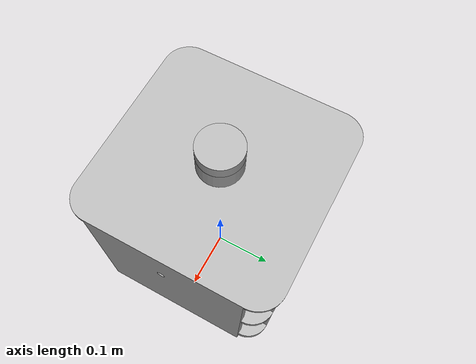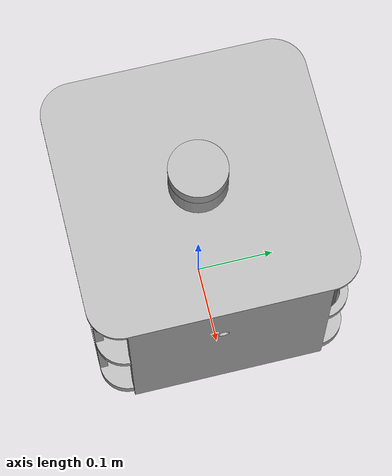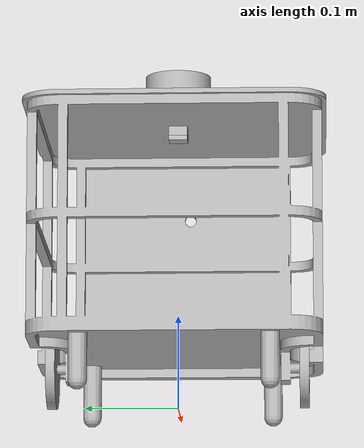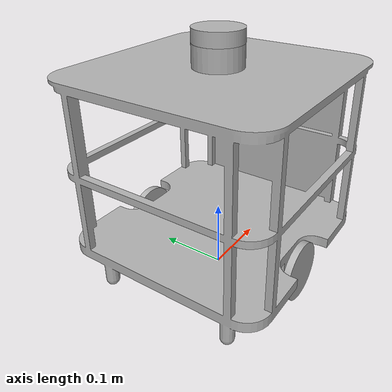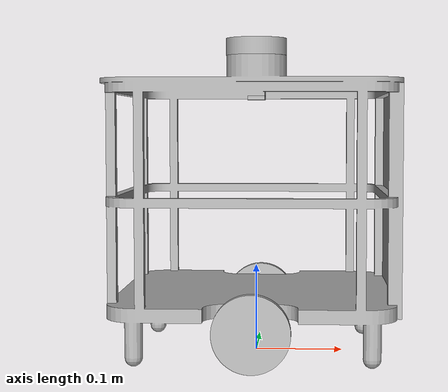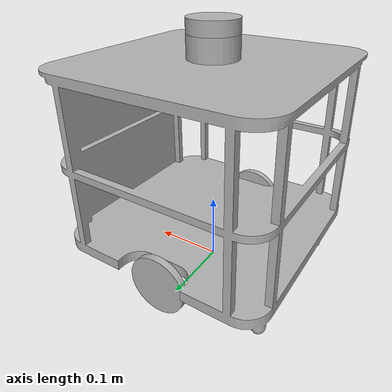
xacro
<?xml version="1.0" ?>
<robot name="bogie" xmlns:xacro="http://www.ros.org/wiki/xacro">

<xacro:include filename="$(find bogie_description)/urdf/materials.xacro" />
<xacro:include filename="$(find bogie_description)/urdf/bogie.trans" />
<xacro:include filename="$(find bogie_description)/urdf/bogie.gazebo" />

<link name="base_footprint"/>

<link name="base_link">
  <inertial>
    <origin xyz="0.023593829702523186 2.7513944896831823e-06 0.1912441485307813" rpy="0 0 0"/>
    <mass value="15.686014886500574"/>
    <inertia ixx="0.331175" iyy="0.376785" izz="0.327602" ixy="-5e-06" iyz="-2e-06" ixz="0.003281"/>
  </inertial>
  <visual>
    <origin xyz="0 0 0" rpy="0 0 0"/>
    <geometry>
      <mesh filename="package://bogie_description/meshes/base_link.stl" scale="0.001 0.001 0.001"/>
    </geometry>
    <material name="silver"/>
  </visual>
  <collision>
    <origin xyz="0 0 0" rpy="0 0 0"/>
    <geometry>
      <mesh filename="package://bogie_description/meshes/base_link.stl" scale="0.001 0.001 0.001"/>
    </geometry>
  </collision>
</link>

<link name="right_wheel">
  <inertial>
    <origin xyz="1.0017341003671332e-17 -0.0050000000000000044 6.938893903907228e-18" rpy="0 0 0"/>
    <mass value="0.44544838584790514"/>
    <inertia ixx="0.000205" iyy="0.000402" izz="0.000205" ixy="-0.0" iyz="-0.0" ixz="0.0"/>
  </inertial>
  <visual>
    <origin xyz="-0.0 0.13 -0.0425" rpy="0 0 0"/>
    <geometry>
      <mesh filename="package://bogie_description/meshes/right_wheel.stl" scale="0.001 0.001 0.001"/>
    </geometry>
    <material name="silver"/>
  </visual>
  <collision>
    <origin xyz="-0.0 0.13 -0.0425" rpy="0 0 0"/>
    <geometry>
      <mesh filename="package://bogie_description/meshes/right_wheel.stl" scale="0.001 0.001 0.001"/>
    </geometry>
  </collision>
</link>

<link name="left_wheel">
  <inertial>
    <origin xyz="2.6999999016951607e-08 0.004999994999997953 2.0816681711721685e-17" rpy="0 0 0"/>
    <mass value="0.44544838584790525"/>
    <inertia ixx="0.000205" iyy="0.000402" izz="0.000205" ixy="0.0" iyz="0.0" ixz="0.0"/>
  </inertial>
  <visual>
    <origin xyz="-0.0 -0.13 -0.0425" rpy="0 0 0"/>
    <geometry>
      <mesh filename="package://bogie_description/meshes/left_wheel.stl" scale="0.001 0.001 0.001"/>
    </geometry>
    <material name="silver"/>
  </visual>
  <collision>
    <origin xyz="-0.0 -0.13 -0.0425" rpy="0 0 0"/>
    <geometry>
      <mesh filename="package://bogie_description/meshes/left_wheel.stl" scale="0.001 0.001 0.001"/>
    </geometry>
  </collision>
</link>

<link name="imu_link">
  <inertial>
    <origin xyz="0.0 0.0 -0.0025000000000000022" rpy="0 0 0"/>
    <mass value="0.0157"/>
    <inertia ixx="1e-06" iyy="1e-06" izz="1e-06" ixy="0.0" iyz="0.0" ixz="0.0"/>
  </inertial>
  <visual>
    <origin xyz="-0.0 -0.0 -0.2975" rpy="0 0 0"/>
    <geometry>
      <mesh filename="package://bogie_description/meshes/imu_link.stl" scale="0.001 0.001 0.001"/>
    </geometry>
    <material name="silver"/>
  </visual>
  <collision>
    <origin xyz="-0.0 -0.0 -0.2975" rpy="0 0 0"/>
    <geometry>
      <mesh filename="package://bogie_description/meshes/imu_link.stl" scale="0.001 0.001 0.001"/>
    </geometry>
  </collision>
</link>

<link name="base_laser_link">
  <inertial>
    <origin xyz="0.0 0.0 0.009750000000000036" rpy="0 0 0"/>
    <mass value="0.5891016369241163"/>
    <inertia ixx="0.000199" iyy="0.000199" izz="0.000361" ixy="0.0" iyz="0.0" ixz="0.0"/>
  </inertial>
  <visual>
    <origin xyz="-0.0 -0.0 -0.344" rpy="0 0 0"/>
    <geometry>
      <mesh filename="package://bogie_description/meshes/base_laser_link.stl" scale="0.001 0.001 0.001"/>
    </geometry>
    <material name="silver"/>
  </visual>
  <collision>
    <origin xyz="-0.0 -0.0 -0.344" rpy="0 0 0"/>
    <geometry>
      <mesh filename="package://bogie_description/meshes/base_laser_link.stl" scale="0.001 0.001 0.001"/>
    </geometry>
  </collision>
</link>

<joint name="base_link_joint" type="fixed">
  <origin xyz="0 0 0" rpy="0 0 0.0" />
  <parent link="base_footprint" />
  <child link="base_link" />
  </joint>

<joint name="Revolute 1" type="continuous">
  <origin xyz="0.0 -0.13 0.0425" rpy="0 0 0"/>
  <parent link="base_link"/>
  <child link="right_wheel"/>
  <axis xyz="0.0 -1.0 0.0"/>
</joint>

<joint name="Revolute 2" type="continuous">
  <origin xyz="0.0 0.13 0.0425" rpy="0 0 0"/>
  <parent link="base_link"/>
  <child link="left_wheel"/>
  <axis xyz="0.0 1.0 0.0"/>
</joint>

<joint name="Rigid 3" type="fixed">
  <origin xyz="0.0 0.0 0.2975" rpy="0 0 0"/>
  <parent link="base_link"/>
  <child link="imu_link"/>
</joint>

<joint name="Rigid 4" type="fixed">
  <origin xyz="0.0 0.0 0.344" rpy="0 0 3.1414"/>
  <parent link="base_link"/>
  <child link="base_laser_link"/>
</joint>

</robot>

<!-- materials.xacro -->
<robot name="bogie" xmlns:xacro="http://www.ros.org/wiki/xacro" >

<material name="silver">
  <color rgba="0.700 0.700 0.700 1.000"/>
</material>

</robot>

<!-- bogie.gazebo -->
<robot name="bogie" xmlns:xacro="http://www.ros.org/wiki/xacro" >

<xacro:property name="body_color" value="Gazebo/Silver" />

<gazebo>
  <plugin name="control" filename="libgazebo_ros_control.so"/>
</gazebo>
<gazebo reference="base_link">
  <material>${body_color}</material>
  <mu1>0.2</mu1>
  <mu2>0.2</mu2>
  <selfCollide>true</selfCollide>
  <gravity>true</gravity>
</gazebo>

<gazebo reference="right_wheel">
  <material>${body_color}</material>
  <mu1>0.2</mu1>
  <mu2>0.2</mu2>
  <selfCollide>true</selfCollide>
</gazebo>

<gazebo reference="left_wheel">
  <material>${body_color}</material>
  <mu1>0.2</mu1>
  <mu2>0.2</mu2>
  <selfCollide>true</selfCollide>
</gazebo>

<gazebo reference="imu_link">
  <material>${body_color}</material>
  <mu1>0.2</mu1>
  <mu2>0.2</mu2>
  <selfCollide>true</selfCollide>
</gazebo>

<gazebo reference="base_laser_link">
  <material>${body_color}</material>
  <mu1>0.2</mu1>
  <mu2>0.2</mu2>
  <selfCollide>true</selfCollide>
</gazebo>

</robot>
